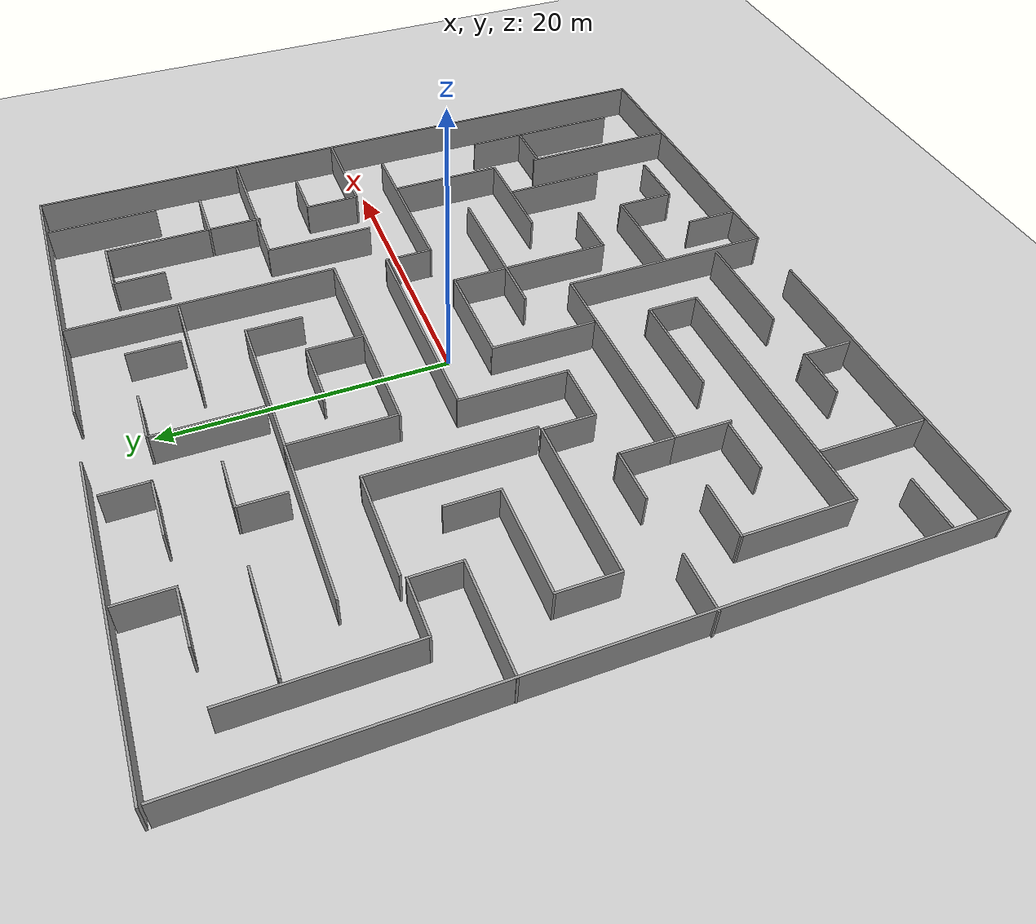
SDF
<sdf version="1.7">
 <world name="default">
  <light name="sun" type="directional">
   <pose>0 0 10 0 -0 0</pose>
   <diffuse>0.8 0.8 0.8 1</diffuse>
   <specular>0.2 0.2 0.2 1</specular>
   <attenuation>
    <range>1000</range>
    <constant>0.9</constant>
    <linear>0.01</linear>
    <quadratic>0.001</quadratic>
   </attenuation>
   <direction>-0.5 0.1 -0.9</direction>
   <spot><inner_angle>0</inner_angle><outer_angle>0</outer_angle><falloff>0</falloff></spot>
  </light>
  <model name="ground_plane">
   <static>1</static>
   <link name="link">
    <collision name="collision">
     <geometry><plane><normal>0 0 1</normal><size>100 100</size></plane></geometry>
     <surface><friction><ode><mu>100</mu><mu2>50</mu2></ode></friction></surface>
    </collision>
    <visual name="visual">
     <cast_shadows>0</cast_shadows>
     <geometry><plane><normal>0 0 1</normal><size>100 100</size></plane></geometry>
     <material>
      <script><uri>file://media/materials/scripts/gazebo.material</uri><name>Gazebo/Grey</name></script>
     </material>
    </visual>
   </link>
  </model>
  <gravity>0 0 -9.8</gravity>
  <magnetic_field>6e-06 2.3e-05 -4.2e-05</magnetic_field>
  <atmosphere type="adiabatic"/>
  <physics type="ode">
   <max_step_size>0.001</max_step_size>
   <real_time_factor>1</real_time_factor>
   <real_time_update_rate>1000</real_time_update_rate>
  </physics>
  <scene><ambient>0.4 0.4 0.4 1</ambient><background>0.7 0.7 0.7 1</background><shadows>1</shadows></scene>
  <audio><device>default</device></audio>
  <spherical_coordinates>
   <surface_model>EARTH_WGS84</surface_model>
   <latitude_deg>0</latitude_deg>
   <longitude_deg>0</longitude_deg>
   <elevation>0</elevation>
   <heading_deg>0</heading_deg>
  </spherical_coordinates>
  <model name="maze">
   <pose>-0.176019 -0.470899 0 0 -0 0</pose>
   <link name="Wall_1">
    <collision name="Wall_1_Collision">
     <geometry><box><size>23 0.15 2.5</size></box></geometry>
     <pose>0 0 1.25 0 -0 0</pose>
    </collision>
    <visual name="Wall_1_Visual">
     <pose>0 0 1.25 0 -0 0</pose>
     <geometry><box><size>23 0.15 2.5</size></box></geometry>
     <material>
      <script><uri>file://media/materials/scripts/gazebo.material</uri><name>Gazebo/Grey</name></script>
      <ambient>1 1 1 1</ambient>
     </material>
     <meta><layer>0</layer></meta>
    </visual>
    <pose>-13.1707 -24.8262 0 0 -0 3.14159</pose>
   </link>
   <link name="Wall_10">
    <collision name="Wall_10_Collision">
     <geometry><box><size>15.5 0.15 2.5</size></box></geometry>
     <pose>0 0 1.25 0 -0 0</pose>
    </collision>
    <visual name="Wall_10_Visual">
     <pose>0 0 1.25 0 -0 0</pose>
     <geometry><box><size>15.5 0.15 2.5</size></box></geometry>
     <material>
      <script><uri>file://media/materials/scripts/gazebo.material</uri><name>Gazebo/Grey</name></script>
      <ambient>1 1 1 1</ambient>
     </material>
     <meta><layer>0</layer></meta>
    </visual>
    <pose>-5.30755 -9.51126 0 0 -0 3.14159</pose>
   </link>
   <link name="Wall_100">
    <collision name="Wall_100_Collision">
     <geometry><box><size>3.75 0.15 2.5</size></box></geometry>
     <pose>0 0 1.25 0 -0 0</pose>
    </collision>
    <visual name="Wall_100_Visual">
     <pose>0 0 1.25 0 -0 0</pose>
     <geometry><box><size>3.75 0.15 2.5</size></box></geometry>
     <material>
      <script><uri>file://media/materials/scripts/gazebo.material</uri><name>Gazebo/Grey</name></script>
      <ambient>1 1 1 1</ambient>
     </material>
     <meta><layer>0</layer></meta>
    </visual>
    <pose>-13.2593 22.7784 0 0 -0 1.5708</pose>
   </link>
   <link name="Wall_102">
    <collision name="Wall_102_Collision">
     <geometry><box><size>4.25 0.15 2.5</size></box></geometry>
     <pose>0 0 1.25 0 -0 0</pose>
    </collision>
    <visual name="Wall_102_Visual">
     <pose>0 0 1.25 0 -0 0</pose>
     <geometry><box><size>4.25 0.15 2.5</size></box></geometry>
     <material>
      <script><uri>file://media/materials/scripts/gazebo.material</uri><name>Gazebo/Grey</name></script>
      <ambient>1 1 1 1</ambient>
     </material>
     <meta><layer>0</layer></meta>
    </visual>
    <pose>-7.45109 21.0658 0 0 -0 0</pose>
   </link>
   <link name="Wall_103">
    <collision name="Wall_103_Collision">
     <geometry><box><size>3.25 0.15 2.5</size></box></geometry>
     <pose>0 0 1.25 0 -0 0</pose>
    </collision>
    <visual name="Wall_103_Visual">
     <pose>0 0 1.25 0 -0 0</pose>
     <geometry><box><size>3.25 0.15 2.5</size></box></geometry>
     <material>
      <script><uri>file://media/materials/scripts/gazebo.material</uri><name>Gazebo/Grey</name></script>
      <ambient>1 1 1 1</ambient>
     </material>
     <meta><layer>0</layer></meta>
    </visual>
    <pose>-5.40109 22.6158 0 0 -0 1.5708</pose>
   </link>
   <link name="Wall_105">
    <collision name="Wall_105_Collision">
     <geometry><box><size>3.75 0.15 2.5</size></box></geometry>
     <pose>0 0 1.25 0 -0 0</pose>
    </collision>
    <visual name="Wall_105_Visual">
     <pose>0 0 1.25 0 -0 0</pose>
     <geometry><box><size>3.75 0.15 2.5</size></box></geometry>
     <material>
      <script><uri>file://media/materials/scripts/gazebo.material</uri><name>Gazebo/Grey</name></script>
      <ambient>1 1 1 1</ambient>
     </material>
     <meta><layer>0</layer></meta>
    </visual>
    <pose>-0.020004 20.8035 0 0 -0 3.14159</pose>
   </link>
   <link name="Wall_106">
    <collision name="Wall_106_Collision">
     <geometry><box><size>7.5 0.15 2.5</size></box></geometry>
     <pose>0 0 1.25 0 -0 0</pose>
    </collision>
    <visual name="Wall_106_Visual">
     <pose>0 0 1.25 0 -0 0</pose>
     <geometry><box><size>7.5 0.15 2.5</size></box></geometry>
     <material>
      <script><uri>file://media/materials/scripts/gazebo.material</uri><name>Gazebo/Grey</name></script>
      <ambient>1 1 1 1</ambient>
     </material>
     <meta><layer>0</layer></meta>
    </visual>
    <pose>-1.82 17.1285 0 0 -0 -1.5708</pose>
   </link>
   <link name="Wall_108">
    <collision name="Wall_108_Collision">
     <geometry><box><size>7.75 0.15 2.5</size></box></geometry>
     <pose>0 0 1.25 0 -0 0</pose>
    </collision>
    <visual name="Wall_108_Visual">
     <pose>0 0 1.25 0 -0 0</pose>
     <geometry><box><size>7.75 0.15 2.5</size></box></geometry>
     <material>
      <script><uri>file://media/materials/scripts/gazebo.material</uri><name>Gazebo/Grey</name></script>
      <ambient>1 1 1 1</ambient>
     </material>
     <meta><layer>0</layer></meta>
    </visual>
    <pose>5.66745 16.8682 0 0 -0 0</pose>
   </link>
   <link name="Wall_11">
    <collision name="Wall_11_Collision">
     <geometry><box><size>4 0.15 2.5</size></box></geometry>
     <pose>0 0 1.25 0 -0 0</pose>
    </collision>
    <visual name="Wall_11_Visual">
     <pose>0 0 1.25 0 -0 0</pose>
     <geometry><box><size>4 0.15 2.5</size></box></geometry>
     <material>
      <script><uri>file://media/materials/scripts/gazebo.material</uri><name>Gazebo/Grey</name></script>
      <ambient>1 1 1 1</ambient>
     </material>
     <meta><layer>0</layer></meta>
    </visual>
    <pose>-12.9826 -7.58626 0 0 -0 1.5708</pose>
   </link>
   <link name="Wall_110">
    <collision name="Wall_110_Collision">
     <geometry><box><size>3.75 0.15 2.5</size></box></geometry>
     <pose>0 0 1.25 0 -0 0</pose>
    </collision>
    <visual name="Wall_110_Visual">
     <pose>0 0 1.25 0 -0 0</pose>
     <geometry><box><size>3.75 0.15 2.5</size></box></geometry>
     <material>
      <script><uri>file://media/materials/scripts/gazebo.material</uri><name>Gazebo/Grey</name></script>
      <ambient>1 1 1 1</ambient>
     </material>
     <meta><layer>0</layer></meta>
    </visual>
    <pose>5.97761 19.1784 0 0 -0 -1.5708</pose>
   </link>
   <link name="Wall_112">
    <collision name="Wall_112_Collision">
     <geometry><box><size>11.5 0.15 2.5</size></box></geometry>
     <pose>0 0 1.25 0 -0 0</pose>
    </collision>
    <visual name="Wall_112_Visual">
     <pose>0 0 1.25 0 -0 0</pose>
     <geometry><box><size>11.5 0.15 2.5</size></box></geometry>
     <material>
      <script><uri>file://media/materials/scripts/gazebo.material</uri><name>Gazebo/Grey</name></script>
      <ambient>1 1 1 1</ambient>
     </material>
     <meta><layer>0</layer></meta>
    </visual>
    <pose>-9.32619 3.74139 0 0 -0 1.5708</pose>
   </link>
   <link name="Wall_113">
    <collision name="Wall_113_Collision">
     <geometry><box><size>7.5 0.15 2.5</size></box></geometry>
     <pose>0 0 1.25 0 -0 0</pose>
    </collision>
    <visual name="Wall_113_Visual">
     <pose>0 0 1.25 0 -0 0</pose>
     <geometry><box><size>7.5 0.15 2.5</size></box></geometry>
     <material>
      <script><uri>file://media/materials/scripts/gazebo.material</uri><name>Gazebo/Grey</name></script>
      <ambient>1 1 1 1</ambient>
     </material>
     <meta><layer>0</layer></meta>
    </visual>
    <pose>-13.0012 9.41639 0 0 -0 3.14159</pose>
   </link>
   <link name="Wall_116">
    <collision name="Wall_116_Collision">
     <geometry><box><size>7.5 0.15 2.5</size></box></geometry>
     <pose>0 0 1.25 0 -0 0</pose>
    </collision>
    <visual name="Wall_116_Visual">
     <pose>0 0 1.25 0 -0 0</pose>
     <geometry><box><size>7.5 0.15 2.5</size></box></geometry>
     <material>
      <script><uri>file://media/materials/scripts/gazebo.material</uri><name>Gazebo/Grey</name></script>
      <ambient>1 1 1 1</ambient>
     </material>
     <meta><layer>0</layer></meta>
    </visual>
    <pose>-1.80547 -5.60443 0 0 -0 1.5708</pose>
   </link>
   <link name="Wall_117">
    <collision name="Wall_117_Collision">
     <geometry><box><size>7.5 0.15 2.5</size></box></geometry>
     <pose>0 0 1.25 0 -0 0</pose>
    </collision>
    <visual name="Wall_117_Visual">
     <pose>0 0 1.25 0 -0 0</pose>
     <geometry><box><size>7.5 0.15 2.5</size></box></geometry>
     <material>
      <script><uri>file://media/materials/scripts/gazebo.material</uri><name>Gazebo/Grey</name></script>
      <ambient>1 1 1 1</ambient>
     </material>
     <meta><layer>0</layer></meta>
    </visual>
    <pose>1.86953 -1.92943 0 0 -0 0</pose>
   </link>
   <link name="Wall_118">
    <collision name="Wall_118_Collision">
     <geometry><box><size>11.75 0.15 2.5</size></box></geometry>
     <pose>0 0 1.25 0 -0 0</pose>
    </collision>
    <visual name="Wall_118_Visual">
     <pose>0 0 1.25 0 -0 0</pose>
     <geometry><box><size>11.75 0.15 2.5</size></box></geometry>
     <material>
      <script><uri>file://media/materials/scripts/gazebo.material</uri><name>Gazebo/Grey</name></script>
      <ambient>1 1 1 1</ambient>
     </material>
     <meta><layer>0</layer></meta>
    </visual>
    <pose>5.54453 -7.72943 0 0 -0 -1.5708</pose>
   </link>
   <link name="Wall_119">
    <collision name="Wall_119_Collision">
     <geometry><box><size>4.25 0.15 2.5</size></box></geometry>
     <pose>0 0 1.25 0 -0 0</pose>
    </collision>
    <visual name="Wall_119_Visual">
     <pose>0 0 1.25 0 -0 0</pose>
     <geometry><box><size>4.25 0.15 2.5</size></box></geometry>
     <material>
      <script><uri>file://media/materials/scripts/gazebo.material</uri><name>Gazebo/Grey</name></script>
      <ambient>1 1 1 1</ambient>
     </material>
     <meta><layer>0</layer></meta>
    </visual>
    <pose>7.59453 -13.5294 0 0 -0 0</pose>
   </link>
   <link name="Wall_12">
    <collision name="Wall_12_Collision">
     <geometry><box><size>3.75 0.15 2.5</size></box></geometry>
     <pose>0 0 1.25 0 -0 0</pose>
    </collision>
    <visual name="Wall_12_Visual">
     <pose>0 0 1.25 0 -0 0</pose>
     <geometry><box><size>3.75 0.15 2.5</size></box></geometry>
     <material>
      <script><uri>file://media/materials/scripts/gazebo.material</uri><name>Gazebo/Grey</name></script>
      <ambient>1 1 1 1</ambient>
     </material>
     <meta><layer>0</layer></meta>
    </visual>
    <pose>-14.7826 -5.66126 0 0 -0 3.14159</pose>
   </link>
   <link name="Wall_121">
    <collision name="Wall_121_Collision">
     <geometry><box><size>11.25 0.15 2.5</size></box></geometry>
     <pose>0 0 1.25 0 -0 0</pose>
    </collision>
    <visual name="Wall_121_Visual">
     <pose>0 0 1.25 0 -0 0</pose>
     <geometry><box><size>11.25 0.15 2.5</size></box></geometry>
     <material>
      <script><uri>file://media/materials/scripts/gazebo.material</uri><name>Gazebo/Grey</name></script>
      <ambient>1 1 1 1</ambient>
     </material>
     <meta><layer>0</layer></meta>
    </visual>
    <pose>7.59235 -5.86887 0 0 -0 0</pose>
   </link>
   <link name="Wall_14">
    <collision name="Wall_14_Collision">
     <geometry><box><size>3.75 0.15 2.5</size></box></geometry>
     <pose>0 0 1.25 0 -0 0</pose>
    </collision>
    <visual name="Wall_14_Visual">
     <pose>0 0 1.25 0 -0 0</pose>
     <geometry><box><size>3.75 0.15 2.5</size></box></geometry>
     <material>
      <script><uri>file://media/materials/scripts/gazebo.material</uri><name>Gazebo/Grey</name></script>
      <ambient>1 1 1 1</ambient>
     </material>
     <meta><layer>0</layer></meta>
    </visual>
    <pose>-15.0615 -13.1272 0 0 -0 3.14159</pose>
   </link>
   <link name="Wall_16">
    <collision name="Wall_16_Collision">
     <geometry><box><size>4 0.15 2.5</size></box></geometry>
     <pose>0 0 1.25 0 -0 0</pose>
    </collision>
    <visual name="Wall_16_Visual">
     <pose>0 0 1.25 0 -0 0</pose>
     <geometry><box><size>4 0.15 2.5</size></box></geometry>
     <material>
      <script><uri>file://media/materials/scripts/gazebo.material</uri><name>Gazebo/Grey</name></script>
      <ambient>1 1 1 1</ambient>
     </material>
     <meta><layer>0</layer></meta>
    </visual>
    <pose>-12.9826 -11.4363 0 0 -0 -1.5708</pose>
   </link>
   <link name="Wall_18">
    <collision name="Wall_18_Collision">
     <geometry><box><size>4 0.15 2.5</size></box></geometry>
     <pose>0 0 1.25 0 -0 0</pose>
    </collision>
    <visual name="Wall_18_Visual">
     <pose>0 0 1.25 0 -0 0</pose>
     <geometry><box><size>4 0.15 2.5</size></box></geometry>
     <material>
      <script><uri>file://media/materials/scripts/gazebo.material</uri><name>Gazebo/Grey</name></script>
      <ambient>1 1 1 1</ambient>
     </material>
     <meta><layer>0</layer></meta>
    </visual>
    <pose>-18.9468 -9.45433 0 0 -0 3.14159</pose>
   </link>
   <link name="Wall_19">
    <collision name="Wall_19_Collision">
     <geometry><box><size>7.75 0.15 2.5</size></box></geometry>
     <pose>0 0 1.25 0 -0 0</pose>
    </collision>
    <visual name="Wall_19_Visual">
     <pose>0 0 1.25 0 -0 0</pose>
     <geometry><box><size>7.75 0.15 2.5</size></box></geometry>
     <material>
      <script><uri>file://media/materials/scripts/gazebo.material</uri><name>Gazebo/Grey</name></script>
      <ambient>1 1 1 1</ambient>
     </material>
     <meta><layer>0</layer></meta>
    </visual>
    <pose>-20.8718 -13.2543 0 0 -0 -1.5708</pose>
   </link>
   <link name="Wall_2">
    <collision name="Wall_2_Collision">
     <geometry><box><size>49.5 0.15 2.5</size></box></geometry>
     <pose>0 0 1.25 0 -0 0</pose>
    </collision>
    <visual name="Wall_2_Visual">
     <pose>0 0 1.25 0 -0 0</pose>
     <geometry><box><size>49.5 0.15 2.5</size></box></geometry>
     <material>
      <script><uri>file://media/materials/scripts/gazebo.material</uri><name>Gazebo/Grey</name></script>
      <ambient>1 1 1 1</ambient>
     </material>
     <meta><layer>0</layer></meta>
    </visual>
    <pose>-24.5957 -0.151188 0 0 -0 1.5708</pose>
   </link>
   <link name="Wall_20">
    <collision name="Wall_20_Collision">
     <geometry><box><size>19 0.15 2.5</size></box></geometry>
     <pose>0 0 1.25 0 -0 0</pose>
    </collision>
    <visual name="Wall_20_Visual">
     <pose>0 0 1.25 0 -0 0</pose>
     <geometry><box><size>19 0.15 2.5</size></box></geometry>
     <material>
      <script><uri>file://media/materials/scripts/gazebo.material</uri><name>Gazebo/Grey</name></script>
      <ambient>1 1 1 1</ambient>
     </material>
     <meta><layer>0</layer></meta>
    </visual>
    <pose>-11.4468 -17.0543 0 0 -0 0</pose>
   </link>
   <link name="Wall_21">
    <collision name="Wall_21_Collision">
     <geometry><box><size>3.75 0.15 2.5</size></box></geometry>
     <pose>0 0 1.25 0 -0 0</pose>
    </collision>
    <visual name="Wall_21_Visual">
     <pose>0 0 1.25 0 -0 0</pose>
     <geometry><box><size>3.75 0.15 2.5</size></box></geometry>
     <material>
      <script><uri>file://media/materials/scripts/gazebo.material</uri><name>Gazebo/Grey</name></script>
      <ambient>1 1 1 1</ambient>
     </material>
     <meta><layer>0</layer></meta>
    </visual>
    <pose>-2.02182 -15.2543 0 0 -0 1.5708</pose>
   </link>
   <link name="Wall_22">
    <collision name="Wall_22_Collision">
     <geometry><box><size>7.5 0.15 2.5</size></box></geometry>
     <pose>0 0 1.25 0 -0 0</pose>
    </collision>
    <visual name="Wall_22_Visual">
     <pose>0 0 1.25 0 -0 0</pose>
     <geometry><box><size>7.5 0.15 2.5</size></box></geometry>
     <material>
      <script><uri>file://media/materials/scripts/gazebo.material</uri><name>Gazebo/Grey</name></script>
      <ambient>1 1 1 1</ambient>
     </material>
     <meta><layer>0</layer></meta>
    </visual>
    <pose>-5.69682 -13.4543 0 0 -0 3.14159</pose>
   </link>
   <link name="Wall_24">
    <collision name="Wall_24_Collision">
     <geometry><box><size>3.75 0.15 2.5</size></box></geometry>
     <pose>0 0 1.25 0 -0 0</pose>
    </collision>
    <visual name="Wall_24_Visual">
     <pose>0 0 1.25 0 -0 0</pose>
     <geometry><box><size>3.75 0.15 2.5</size></box></geometry>
     <material>
      <script><uri>file://media/materials/scripts/gazebo.material</uri><name>Gazebo/Grey</name></script>
      <ambient>1 1 1 1</ambient>
     </material>
     <meta><layer>0</layer></meta>
    </visual>
    <pose>-22.5822 -20.9978 0 0 -0 3.14159</pose>
   </link>
   <link name="Wall_26">
    <collision name="Wall_26_Collision">
     <geometry><box><size>7.5 0.15 2.5</size></box></geometry>
     <pose>0 0 1.25 0 -0 0</pose>
    </collision>
    <visual name="Wall_26_Visual">
     <pose>0 0 1.25 0 -0 0</pose>
     <geometry><box><size>7.5 0.15 2.5</size></box></geometry>
     <material>
      <script><uri>file://media/materials/scripts/gazebo.material</uri><name>Gazebo/Grey</name></script>
      <ambient>1 1 1 1</ambient>
     </material>
     <meta><layer>0</layer></meta>
    </visual>
    <pose>-17.0218 -20.9124 0 0 -0 -1.5708</pose>
   </link>
   <link name="Wall_28">
    <collision name="Wall_28_Collision">
     <geometry><box><size>3.75 0.15 2.5</size></box></geometry>
     <pose>0 0 1.25 0 -0 0</pose>
    </collision>
    <visual name="Wall_28_Visual">
     <pose>0 0 1.25 0 -0 0</pose>
     <geometry><box><size>3.75 0.15 2.5</size></box></geometry>
     <material>
      <script><uri>file://media/materials/scripts/gazebo.material</uri><name>Gazebo/Grey</name></script>
      <ambient>1 1 1 1</ambient>
     </material>
     <meta><layer>0</layer></meta>
    </visual>
    <pose>-11.2866 -20.9978 0 0 -0 0</pose>
   </link>
   <link name="Wall_29">
    <collision name="Wall_29_Collision">
     <geometry><box><size>3.5 0.15 2.5</size></box></geometry>
     <pose>0 0 1.25 0 -0 0</pose>
    </collision>
    <visual name="Wall_29_Visual">
     <pose>0 0 1.25 0 -0 0</pose>
     <geometry><box><size>3.5 0.15 2.5</size></box></geometry>
     <material>
      <script><uri>file://media/materials/scripts/gazebo.material</uri><name>Gazebo/Grey</name></script>
      <ambient>1 1 1 1</ambient>
     </material>
     <meta><layer>0</layer></meta>
    </visual>
    <pose>-9.48656 -22.6728 0 0 -0 -1.5708</pose>
   </link>
   <link name="Wall_31">
    <collision name="Wall_31_Collision">
     <geometry><box><size>7.75 0.15 2.5</size></box></geometry>
     <pose>0 0 1.25 0 -0 0</pose>
    </collision>
    <visual name="Wall_31_Visual">
     <pose>0 0 1.25 0 -0 0</pose>
     <geometry><box><size>7.75 0.15 2.5</size></box></geometry>
     <material>
      <script><uri>file://media/materials/scripts/gazebo.material</uri><name>Gazebo/Grey</name></script>
      <ambient>1 1 1 1</ambient>
     </material>
     <meta><layer>0</layer></meta>
    </visual>
    <pose>-1.94073 -20.9103 0 0 -0 0</pose>
   </link>
   <link name="Wall_33">
    <collision name="Wall_33_Collision">
     <geometry><box><size>4 0.15 2.5</size></box></geometry>
     <pose>0 0 1.25 0 -0 0</pose>
    </collision>
    <visual name="Wall_33_Visual">
     <pose>0 0 1.25 0 -0 0</pose>
     <geometry><box><size>4 0.15 2.5</size></box></geometry>
     <material>
      <script><uri>file://media/materials/scripts/gazebo.material</uri><name>Gazebo/Grey</name></script>
      <ambient>1 1 1 1</ambient>
     </material>
     <meta><layer>0</layer></meta>
    </visual>
    <pose>-22.7924 -5.78142 0 0 -0 0</pose>
   </link>
   <link name="Wall_35">
    <collision name="Wall_35_Collision">
     <geometry><box><size>7.75 0.15 2.5</size></box></geometry>
     <pose>0 0 1.25 0 -0 0</pose>
    </collision>
    <visual name="Wall_35_Visual">
     <pose>0 0 1.25 0 -0 0</pose>
     <geometry><box><size>7.75 0.15 2.5</size></box></geometry>
     <material>
      <script><uri>file://media/materials/scripts/gazebo.material</uri><name>Gazebo/Grey</name></script>
      <ambient>1 1 1 1</ambient>
     </material>
     <meta><layer>0</layer></meta>
    </visual>
    <pose>-20.83 5.76202 0 0 -0 0</pose>
   </link>
   <link name="Wall_36">
    <collision name="Wall_36_Collision">
     <geometry><box><size>3.5 0.15 2.5</size></box></geometry>
     <pose>0 0 1.25 0 -0 0</pose>
    </collision>
    <visual name="Wall_36_Visual">
     <pose>0 0 1.25 0 -0 0</pose>
     <geometry><box><size>3.5 0.15 2.5</size></box></geometry>
     <material>
      <script><uri>file://media/materials/scripts/gazebo.material</uri><name>Gazebo/Grey</name></script>
      <ambient>1 1 1 1</ambient>
     </material>
     <meta><layer>0</layer></meta>
    </visual>
    <pose>-17.03 7.43702 0 0 -0 1.5708</pose>
   </link>
   <link name="Wall_37">
    <collision name="Wall_37_Collision">
     <geometry><box><size>4 0.15 2.5</size></box></geometry>
     <pose>0 0 1.25 0 -0 0</pose>
    </collision>
    <visual name="Wall_37_Visual">
     <pose>0 0 1.25 0 -0 0</pose>
     <geometry><box><size>4 0.15 2.5</size></box></geometry>
     <material>
      <script><uri>file://media/materials/scripts/gazebo.material</uri><name>Gazebo/Grey</name></script>
      <ambient>1 1 1 1</ambient>
     </material>
     <meta><layer>0</layer></meta>
    </visual>
    <pose>-18.955 9.11202 0 0 -0 3.14159</pose>
   </link>
   <link name="Wall_38">
    <collision name="Wall_38_Collision">
     <geometry><box><size>11.75 0.15 2.5</size></box></geometry>
     <pose>0 0 1.25 0 -0 0</pose>
    </collision>
    <visual name="Wall_38_Visual">
     <pose>0 0 1.25 0 -0 0</pose>
     <geometry><box><size>11.75 0.15 2.5</size></box></geometry>
     <material>
      <script><uri>file://media/materials/scripts/gazebo.material</uri><name>Gazebo/Grey</name></script>
      <ambient>1 1 1 1</ambient>
     </material>
     <meta><layer>0</layer></meta>
    </visual>
    <pose>-20.88 14.912 0 0 -0 1.5708</pose>
   </link>
   <link name="Wall_4">
    <collision name="Wall_4_Collision">
     <geometry><box><size>22.25 0.15 2.5</size></box></geometry>
     <pose>0 0 1.25 0 -0 0</pose>
    </collision>
    <visual name="Wall_4_Visual">
     <pose>0 0 1.25 0 -0 0</pose>
     <geometry><box><size>22.25 0.15 2.5</size></box></geometry>
     <material>
      <script><uri>file://media/materials/scripts/gazebo.material</uri><name>Gazebo/Grey</name></script>
      <ambient>1 1 1 1</ambient>
     </material>
     <meta><layer>0</layer></meta>
    </visual>
    <pose>-13.58 24.8262 0 0 -0 0</pose>
   </link>
   <link name="Wall_40">
    <collision name="Wall_40_Collision">
     <geometry><box><size>3.75 0.15 2.5</size></box></geometry>
     <pose>0 0 1.25 0 -0 0</pose>
    </collision>
    <visual name="Wall_40_Visual">
     <pose>0 0 1.25 0 -0 0</pose>
     <geometry><box><size>3.75 0.15 2.5</size></box></geometry>
     <material>
      <script><uri>file://media/materials/scripts/gazebo.material</uri><name>Gazebo/Grey</name></script>
      <ambient>1 1 1 1</ambient>
     </material>
     <meta><layer>0</layer></meta>
    </visual>
    <pose>-13.0866 3.78712 0 0 -0 -1.5708</pose>
   </link>
   <link name="Wall_41">
    <collision name="Wall_41_Collision">
     <geometry><box><size>7.75 0.15 2.5</size></box></geometry>
     <pose>0 0 1.25 0 -0 0</pose>
    </collision>
    <visual name="Wall_41_Visual">
     <pose>0 0 1.25 0 -0 0</pose>
     <geometry><box><size>7.75 0.15 2.5</size></box></geometry>
     <material>
      <script><uri>file://media/materials/scripts/gazebo.material</uri><name>Gazebo/Grey</name></script>
      <ambient>1 1 1 1</ambient>
     </material>
     <meta><layer>0</layer></meta>
    </visual>
    <pose>-16.8866 1.98712 0 0 -0 3.14159</pose>
   </link>
   <link name="Wall_42">
    <collision name="Wall_42_Collision">
     <geometry><box><size>4.25 0.15 2.5</size></box></geometry>
     <pose>0 0 1.25 0 -0 0</pose>
    </collision>
    <visual name="Wall_42_Visual">
     <pose>0 0 1.25 0 -0 0</pose>
     <geometry><box><size>4.25 0.15 2.5</size></box></geometry>
     <material>
      <script><uri>file://media/materials/scripts/gazebo.material</uri><name>Gazebo/Grey</name></script>
      <ambient>1 1 1 1</ambient>
     </material>
     <meta><layer>0</layer></meta>
    </visual>
    <pose>-20.6866 -0.062878 0 0 -0 -1.5708</pose>
   </link>
   <link name="Wall_43">
    <collision name="Wall_43_Collision">
     <geometry><box><size>11.25 0.15 2.5</size></box></geometry>
     <pose>0 0 1.25 0 -0 0</pose>
    </collision>
    <visual name="Wall_43_Visual">
     <pose>0 0 1.25 0 -0 0</pose>
     <geometry><box><size>11.25 0.15 2.5</size></box></geometry>
     <material>
      <script><uri>file://media/materials/scripts/gazebo.material</uri><name>Gazebo/Grey</name></script>
      <ambient>1 1 1 1</ambient>
     </material>
     <meta><layer>0</layer></meta>
    </visual>
    <pose>-15.1366 -2.11288 0 0 -0 0</pose>
   </link>
   <link name="Wall_44">
    <collision name="Wall_44_Collision">
     <geometry><box><size>3.75 0.15 2.5</size></box></geometry>
     <pose>0 0 1.25 0 -0 0</pose>
    </collision>
    <visual name="Wall_44_Visual">
     <pose>0 0 1.25 0 -0 0</pose>
     <geometry><box><size>3.75 0.15 2.5</size></box></geometry>
     <material>
      <script><uri>file://media/materials/scripts/gazebo.material</uri><name>Gazebo/Grey</name></script>
      <ambient>1 1 1 1</ambient>
     </material>
     <meta><layer>0</layer></meta>
    </visual>
    <pose>-9.58656 -3.91288 0 0 -0 -1.5708</pose>
   </link>
   <link name="Wall_45">
    <collision name="Wall_45_Collision">
     <geometry><box><size>4.25 0.15 2.5</size></box></geometry>
     <pose>0 0 1.25 0 -0 0</pose>
    </collision>
    <visual name="Wall_45_Visual">
     <pose>0 0 1.25 0 -0 0</pose>
     <geometry><box><size>4.25 0.15 2.5</size></box></geometry>
     <material>
      <script><uri>file://media/materials/scripts/gazebo.material</uri><name>Gazebo/Grey</name></script>
      <ambient>1 1 1 1</ambient>
     </material>
     <meta><layer>0</layer></meta>
    </visual>
    <pose>-7.53656 -5.71288 0 0 -0 0</pose>
   </link>
   <link name="Wall_46">
    <collision name="Wall_46_Collision">
     <geometry><box><size>7.75 0.15 2.5</size></box></geometry>
     <pose>0 0 1.25 0 -0 0</pose>
    </collision>
    <visual name="Wall_46_Visual">
     <pose>0 0 1.25 0 -0 0</pose>
     <geometry><box><size>7.75 0.15 2.5</size></box></geometry>
     <material>
      <script><uri>file://media/materials/scripts/gazebo.material</uri><name>Gazebo/Grey</name></script>
      <ambient>1 1 1 1</ambient>
     </material>
     <meta><layer>0</layer></meta>
    </visual>
    <pose>-5.48656 -1.91288 0 0 -0 1.5708</pose>
   </link>
   <link name="Wall_47">
    <collision name="Wall_47_Collision">
     <geometry><box><size>15 0.15 2.5</size></box></geometry>
     <pose>0 0 1.25 0 -0 0</pose>
    </collision>
    <visual name="Wall_47_Visual">
     <pose>0 0 1.25 0 -0 0</pose>
     <geometry><box><size>15 0.15 2.5</size></box></geometry>
     <material>
      <script><uri>file://media/materials/scripts/gazebo.material</uri><name>Gazebo/Grey</name></script>
      <ambient>1 1 1 1</ambient>
     </material>
     <meta><layer>0</layer></meta>
    </visual>
    <pose>1.93844 1.88712 0 0 -0 0</pose>
   </link>
   <link name="Wall_48">
    <collision name="Wall_48_Collision">
     <geometry><box><size>3.5 0.15 2.5</size></box></geometry>
     <pose>0 0 1.25 0 -0 0</pose>
    </collision>
    <visual name="Wall_48_Visual">
     <pose>0 0 1.25 0 -0 0</pose>
     <geometry><box><size>3.5 0.15 2.5</size></box></geometry>
     <material>
      <script><uri>file://media/materials/scripts/gazebo.material</uri><name>Gazebo/Grey</name></script>
      <ambient>1 1 1 1</ambient>
     </material>
     <meta><layer>0</layer></meta>
    </visual>
    <pose>9.36344 0.212122 0 0 -0 -1.5708</pose>
   </link>
   <link name="Wall_49">
    <collision name="Wall_49_Collision">
     <geometry><box><size>11.75 0.15 2.5</size></box></geometry>
     <pose>0 0 1.25 0 -0 0</pose>
    </collision>
    <visual name="Wall_49_Visual">
     <pose>0 0 1.25 0 -0 0</pose>
     <geometry><box><size>11.75 0.15 2.5</size></box></geometry>
     <material>
      <script><uri>file://media/materials/scripts/gazebo.material</uri><name>Gazebo/Grey</name></script>
      <ambient>1 1 1 1</ambient>
     </material>
     <meta><layer>0</layer></meta>
    </visual>
    <pose>15.1634 -1.46288 0 0 -0 0</pose>
   </link>
   <link name="Wall_51">
    <collision name="Wall_51_Collision">
     <geometry><box><size>8.25 0.15 2.5</size></box></geometry>
     <pose>0 0 1.25 0 -0 0</pose>
    </collision>
    <visual name="Wall_51_Visual">
     <pose>0 0 1.25 0 -0 0</pose>
     <geometry><box><size>8.25 0.15 2.5</size></box></geometry>
     <material>
      <script><uri>file://media/materials/scripts/gazebo.material</uri><name>Gazebo/Grey</name></script>
      <ambient>1 1 1 1</ambient>
     </material>
     <meta><layer>0</layer></meta>
    </visual>
    <pose>17.4336 -5.6338 0 0 -0 -1.5708</pose>
   </link>
   <link name="Wall_52">
    <collision name="Wall_52_Collision">
     <geometry><box><size>7.75 0.15 2.5</size></box></geometry>
     <pose>0 0 1.25 0 -0 0</pose>
    </collision>
    <visual name="Wall_52_Visual">
     <pose>0 0 1.25 0 -0 0</pose>
     <geometry><box><size>7.75 0.15 2.5</size></box></geometry>
     <material>
      <script><uri>file://media/materials/scripts/gazebo.material</uri><name>Gazebo/Grey</name></script>
      <ambient>1 1 1 1</ambient>
     </material>
     <meta><layer>0</layer></meta>
    </visual>
    <pose>13.6336 -9.6838 0 0 -0 3.14159</pose>
   </link>
   <link name="Wall_54">
    <collision name="Wall_54_Collision">
     <geometry><box><size>7.25 0.15 2.5</size></box></geometry>
     <pose>0 0 1.25 0 -0 0</pose>
    </collision>
    <visual name="Wall_54_Visual">
     <pose>0 0 1.25 0 -0 0</pose>
     <geometry><box><size>7.25 0.15 2.5</size></box></geometry>
     <material>
      <script><uri>file://media/materials/scripts/gazebo.material</uri><name>Gazebo/Grey</name></script>
      <ambient>1 1 1 1</ambient>
     </material>
     <meta><layer>0</layer></meta>
    </visual>
    <pose>13.9356 -13.4416 0 0 -0 -1.5708</pose>
   </link>
   <link name="Wall_56">
    <collision name="Wall_56_Collision">
     <geometry><box><size>3.75 0.15 2.5</size></box></geometry>
     <pose>0 0 1.25 0 -0 0</pose>
    </collision>
    <visual name="Wall_56_Visual">
     <pose>0 0 1.25 0 -0 0</pose>
     <geometry><box><size>3.75 0.15 2.5</size></box></geometry>
     <material>
      <script><uri>file://media/materials/scripts/gazebo.material</uri><name>Gazebo/Grey</name></script>
      <ambient>1 1 1 1</ambient>
     </material>
     <meta><layer>0</layer></meta>
    </visual>
    <pose>5.80271 -22.7103 0 0 -0 -1.5708</pose>
   </link>
   <link name="Wall_58">
    <collision name="Wall_58_Collision">
     <geometry><box><size>7.25 0.15 2.5</size></box></geometry>
     <pose>0 0 1.25 0 -0 0</pose>
    </collision>
    <visual name="Wall_58_Visual">
     <pose>0 0 1.25 0 -0 0</pose>
     <geometry><box><size>7.25 0.15 2.5</size></box></geometry>
     <material>
      <script><uri>file://media/materials/scripts/gazebo.material</uri><name>Gazebo/Grey</name></script>
      <ambient>1 1 1 1</ambient>
     </material>
     <meta><layer>0</layer></meta>
    </visual>
    <pose>5.94215 -16.9751 0 0 -0 0</pose>
   </link>
   <link name="Wall_59">
    <collision name="Wall_59_Collision">
     <geometry><box><size>4.25 0.15 2.5</size></box></geometry>
     <pose>0 0 1.25 0 -0 0</pose>
    </collision>
    <visual name="Wall_59_Visual">
     <pose>0 0 1.25 0 -0 0</pose>
     <geometry><box><size>4.25 0.15 2.5</size></box></geometry>
     <material>
      <script><uri>file://media/materials/scripts/gazebo.material</uri><name>Gazebo/Grey</name></script>
      <ambient>1 1 1 1</ambient>
     </material>
     <meta><layer>0</layer></meta>
    </visual>
    <pose>9.49215 -19.0251 0 0 -0 -1.5708</pose>
   </link>
   <link name="Wall_6">
    <collision name="Wall_6_Collision">
     <geometry><box><size>23 0.15 2.5</size></box></geometry>
     <pose>0 0 1.25 0 -0 0</pose>
    </collision>
    <visual name="Wall_6_Visual">
     <pose>0 0 1.25 0 -0 0</pose>
     <geometry><box><size>23 0.15 2.5</size></box></geometry>
     <material>
      <script><uri>file://media/materials/scripts/gazebo.material</uri><name>Gazebo/Grey</name></script>
      <ambient>1 1 1 1</ambient>
     </material>
     <meta><layer>0</layer></meta>
    </visual>
    <pose>13.2924 24.7387 0 0 -0 0</pose>
   </link>
   <link name="Wall_60">
    <collision name="Wall_60_Collision">
     <geometry><box><size>4.25 0.15 2.5</size></box></geometry>
     <pose>0 0 1.25 0 -0 0</pose>
    </collision>
    <visual name="Wall_60_Visual">
     <pose>0 0 1.25 0 -0 0</pose>
     <geometry><box><size>4.25 0.15 2.5</size></box></geometry>
     <material>
      <script><uri>file://media/materials/scripts/gazebo.material</uri><name>Gazebo/Grey</name></script>
      <ambient>1 1 1 1</ambient>
     </material>
     <meta><layer>0</layer></meta>
    </visual>
    <pose>11.5421 -21.0751 0 0 -0 0</pose>
   </link>
   <link name="Wall_62">
    <collision name="Wall_62_Collision">
     <geometry><box><size>11.5 0.15 2.5</size></box></geometry>
     <pose>0 0 1.25 0 -0 0</pose>
    </collision>
    <visual name="Wall_62_Visual">
     <pose>0 0 1.25 0 -0 0</pose>
     <geometry><box><size>11.5 0.15 2.5</size></box></geometry>
     <material>
      <script><uri>file://media/materials/scripts/gazebo.material</uri><name>Gazebo/Grey</name></script>
      <ambient>1 1 1 1</ambient>
     </material>
     <meta><layer>0</layer></meta>
    </visual>
    <pose>17.3462 -18.8022 0 0 -0 -1.5708</pose>
   </link>
   <link name="Wall_64">
    <collision name="Wall_64_Collision">
     <geometry><box><size>3.5 0.15 2.5</size></box></geometry>
     <pose>0 0 1.25 0 -0 0</pose>
    </collision>
    <visual name="Wall_64_Visual">
     <pose>0 0 1.25 0 -0 0</pose>
     <geometry><box><size>3.5 0.15 2.5</size></box></geometry>
     <material>
      <script><uri>file://media/materials/scripts/gazebo.material</uri><name>Gazebo/Grey</name></script>
      <ambient>1 1 1 1</ambient>
     </material>
     <meta><layer>0</layer></meta>
    </visual>
    <pose>19.1961 -13.3896 0 0 -0 0</pose>
   </link>
   <link name="Wall_66">
    <collision name="Wall_66_Collision">
     <geometry><box><size>11.75 0.15 2.5</size></box></geometry>
     <pose>0 0 1.25 0 -0 0</pose>
    </collision>
    <visual name="Wall_66_Visual">
     <pose>0 0 1.25 0 -0 0</pose>
     <geometry><box><size>11.75 0.15 2.5</size></box></geometry>
     <material>
      <script><uri>file://media/materials/scripts/gazebo.material</uri><name>Gazebo/Grey</name></script>
      <ambient>1 1 1 1</ambient>
     </material>
     <meta><layer>0</layer></meta>
    </visual>
    <pose>21.1065 -15.2543 0 0 -0 -1.5708</pose>
   </link>
   <link name="Wall_68">
    <collision name="Wall_68_Collision">
     <geometry><box><size>7.25 0.15 2.5</size></box></geometry>
     <pose>0 0 1.25 0 -0 0</pose>
    </collision>
    <visual name="Wall_68_Visual">
     <pose>0 0 1.25 0 -0 0</pose>
     <geometry><box><size>7.25 0.15 2.5</size></box></geometry>
     <material>
      <script><uri>file://media/materials/scripts/gazebo.material</uri><name>Gazebo/Grey</name></script>
      <ambient>1 1 1 1</ambient>
     </material>
     <meta><layer>0</layer></meta>
    </visual>
    <pose>21.0545 1.73931 0 0 -0 3.14159</pose>
   </link>
   <link name="Wall_69">
    <collision name="Wall_69_Collision">
     <geometry><box><size>4 0.15 2.5</size></box></geometry>
     <pose>0 0 1.25 0 -0 0</pose>
    </collision>
    <visual name="Wall_69_Visual">
     <pose>0 0 1.25 0 -0 0</pose>
     <geometry><box><size>4 0.15 2.5</size></box></geometry>
     <material>
      <script><uri>file://media/materials/scripts/gazebo.material</uri><name>Gazebo/Grey</name></script>
      <ambient>1 1 1 1</ambient>
     </material>
     <meta><layer>0</layer></meta>
    </visual>
    <pose>17.5045 3.66431 0 0 -0 1.5708</pose>
   </link>
   <link name="Wall_7">
    <collision name="Wall_7_Collision">
     <geometry><box><size>49.5 0.15 2.5</size></box></geometry>
     <pose>0 0 1.25 0 -0 0</pose>
    </collision>
    <visual name="Wall_7_Visual">
     <pose>0 0 1.25 0 -0 0</pose>
     <geometry><box><size>49.5 0.15 2.5</size></box></geometry>
     <material>
      <script><uri>file://media/materials/scripts/gazebo.material</uri><name>Gazebo/Grey</name></script>
      <ambient>1 1 1 1</ambient>
     </material>
     <meta><layer>0</layer></meta>
    </visual>
    <pose>24.7174 0.063741 0 0 -0 -1.5708</pose>
   </link>
   <link name="Wall_70">
    <collision name="Wall_70_Collision">
     <geometry><box><size>3.75 0.15 2.5</size></box></geometry>
     <pose>0 0 1.25 0 -0 0</pose>
    </collision>
    <visual name="Wall_70_Visual">
     <pose>0 0 1.25 0 -0 0</pose>
     <geometry><box><size>3.75 0.15 2.5</size></box></geometry>
     <material>
      <script><uri>file://media/materials/scripts/gazebo.material</uri><name>Gazebo/Grey</name></script>
      <ambient>1 1 1 1</ambient>
     </material>
     <meta><layer>0</layer></meta>
    </visual>
    <pose>19.3045 5.58931 0 0 -0 0</pose>
   </link>
   <link name="Wall_72">
    <collision name="Wall_72_Collision">
     <geometry><box><size>7.75 0.15 2.5</size></box></geometry>
     <pose>0 0 1.25 0 -0 0</pose>
    </collision>
    <visual name="Wall_72_Visual">
     <pose>0 0 1.25 0 -0 0</pose>
     <geometry><box><size>7.75 0.15 2.5</size></box></geometry>
     <material>
      <script><uri>file://media/materials/scripts/gazebo.material</uri><name>Gazebo/Grey</name></script>
      <ambient>1 1 1 1</ambient>
     </material>
     <meta><layer>0</layer></meta>
    </visual>
    <pose>13.4109 5.80166 0 0 -0 1.5708</pose>
   </link>
   <link name="Wall_73">
    <collision name="Wall_73_Collision">
     <geometry><box><size>11.25 0.15 2.5</size></box></geometry>
     <pose>0 0 1.25 0 -0 0</pose>
    </collision>
    <visual name="Wall_73_Visual">
     <pose>0 0 1.25 0 -0 0</pose>
     <geometry><box><size>11.25 0.15 2.5</size></box></geometry>
     <material>
      <script><uri>file://media/materials/scripts/gazebo.material</uri><name>Gazebo/Grey</name></script>
      <ambient>1 1 1 1</ambient>
     </material>
     <meta><layer>0</layer></meta>
    </visual>
    <pose>18.9609 9.60166 0 0 -0 0</pose>
   </link>
   <link name="Wall_75">
    <collision name="Wall_75_Collision">
     <geometry><box><size>11.5 0.15 2.5</size></box></geometry>
     <pose>0 0 1.25 0 -0 0</pose>
    </collision>
    <visual name="Wall_75_Visual">
     <pose>0 0 1.25 0 -0 0</pose>
     <geometry><box><size>11.5 0.15 2.5</size></box></geometry>
     <material>
      <script><uri>file://media/materials/scripts/gazebo.material</uri><name>Gazebo/Grey</name></script>
      <ambient>1 1 1 1</ambient>
     </material>
     <meta><layer>0</layer></meta>
    </visual>
    <pose>17.3462 15.1099 0 0 -0 1.5708</pose>
   </link>
   <link name="Wall_76">
    <collision name="Wall_76_Collision">
     <geometry><box><size>4 0.15 2.5</size></box></geometry>
     <pose>0 0 1.25 0 -0 0</pose>
    </collision>
    <visual name="Wall_76_Visual">
     <pose>0 0 1.25 0 -0 0</pose>
     <geometry><box><size>4 0.15 2.5</size></box></geometry>
     <material>
      <script><uri>file://media/materials/scripts/gazebo.material</uri><name>Gazebo/Grey</name></script>
      <ambient>1 1 1 1</ambient>
     </material>
     <meta><layer>0</layer></meta>
    </visual>
    <pose>15.4212 20.7849 0 0 -0 3.14159</pose>
   </link>
   <link name="Wall_77">
    <collision name="Wall_77_Collision">
     <geometry><box><size>3.75 0.15 2.5</size></box></geometry>
     <pose>0 0 1.25 0 -0 0</pose>
    </collision>
    <visual name="Wall_77_Visual">
     <pose>0 0 1.25 0 -0 0</pose>
     <geometry><box><size>3.75 0.15 2.5</size></box></geometry>
     <material>
      <script><uri>file://media/materials/scripts/gazebo.material</uri><name>Gazebo/Grey</name></script>
      <ambient>1 1 1 1</ambient>
     </material>
     <meta><layer>0</layer></meta>
    </visual>
    <pose>13.4962 18.9849 0 0 -0 -1.5708</pose>
   </link>
   <link name="Wall_79">
    <collision name="Wall_79_Collision">
     <geometry><box><size>4 0.15 2.5</size></box></geometry>
     <pose>0 0 1.25 0 -0 0</pose>
    </collision>
    <visual name="Wall_79_Visual">
     <pose>0 0 1.25 0 -0 0</pose>
     <geometry><box><size>4 0.15 2.5</size></box></geometry>
     <material>
      <script><uri>file://media/materials/scripts/gazebo.material</uri><name>Gazebo/Grey</name></script>
      <ambient>1 1 1 1</ambient>
     </material>
     <meta><layer>0</layer></meta>
    </visual>
    <pose>19.2712 13.1953 0 0 -0 0</pose>
   </link>
   <link name="Wall_8">
    <collision name="Wall_8_Collision">
     <geometry><box><size>22.5 0.15 2.5</size></box></geometry>
     <pose>0 0 1.25 0 -0 0</pose>
    </collision>
    <visual name="Wall_8_Visual">
     <pose>0 0 1.25 0 -0 0</pose>
     <geometry><box><size>22.5 0.15 2.5</size></box></geometry>
     <material>
      <script><uri>file://media/materials/scripts/gazebo.material</uri><name>Gazebo/Grey</name></script>
      <ambient>1 1 1 1</ambient>
     </material>
     <meta><layer>0</layer></meta>
    </visual>
    <pose>13.5424 -24.6113 0 0 -0 3.14159</pose>
   </link>
   <link name="Wall_81">
    <collision name="Wall_81_Collision">
     <geometry><box><size>8 0.15 2.5</size></box></geometry>
     <pose>0 0 1.25 0 -0 0</pose>
    </collision>
    <visual name="Wall_81_Visual">
     <pose>0 0 1.25 0 -0 0</pose>
     <geometry><box><size>8 0.15 2.5</size></box></geometry>
     <material>
      <script><uri>file://media/materials/scripts/gazebo.material</uri><name>Gazebo/Grey</name></script>
      <ambient>1 1 1 1</ambient>
     </material>
     <meta><layer>0</layer></meta>
    </visual>
    <pose>21.1065 20.5514 0 0 -0 -1.5708</pose>
   </link>
   <link name="Wall_83">
    <collision name="Wall_83_Collision">
     <geometry><box><size>19 0.15 2.5</size></box></geometry>
     <pose>0 0 1.25 0 -0 0</pose>
    </collision>
    <visual name="Wall_83_Visual">
     <pose>0 0 1.25 0 -0 0</pose>
     <geometry><box><size>19 0.15 2.5</size></box></geometry>
     <material>
      <script><uri>file://media/materials/scripts/gazebo.material</uri><name>Gazebo/Grey</name></script>
      <ambient>1 1 1 1</ambient>
     </material>
     <meta><layer>0</layer></meta>
    </visual>
    <pose>9.73797 15.1388 0 0 -0 -1.5708</pose>
   </link>
   <link name="Wall_84">
    <collision name="Wall_84_Collision">
     <geometry><box><size>15.25 0.15 2.5</size></box></geometry>
     <pose>0 0 1.25 0 -0 0</pose>
    </collision>
    <visual name="Wall_84_Visual">
     <pose>0 0 1.25 0 -0 0</pose>
     <geometry><box><size>15.25 0.15 2.5</size></box></geometry>
     <material>
      <script><uri>file://media/materials/scripts/gazebo.material</uri><name>Gazebo/Grey</name></script>
      <ambient>1 1 1 1</ambient>
     </material>
     <meta><layer>0</layer></meta>
    </visual>
    <pose>2.18797 5.71384 0 0 -0 3.14159</pose>
   </link>
   <link name="Wall_85">
    <collision name="Wall_85_Collision">
     <geometry><box><size>7.5 0.15 2.5</size></box></geometry>
     <pose>0 0 1.25 0 -0 0</pose>
    </collision>
    <visual name="Wall_85_Visual">
     <pose>0 0 1.25 0 -0 0</pose>
     <geometry><box><size>7.5 0.15 2.5</size></box></geometry>
     <material>
      <script><uri>file://media/materials/scripts/gazebo.material</uri><name>Gazebo/Grey</name></script>
      <ambient>1 1 1 1</ambient>
     </material>
     <meta><layer>0</layer></meta>
    </visual>
    <pose>-5.36203 9.38884 0 0 -0 1.5708</pose>
   </link>
   <link name="Wall_86">
    <collision name="Wall_86_Collision">
     <geometry><box><size>11.75 0.15 2.5</size></box></geometry>
     <pose>0 0 1.25 0 -0 0</pose>
    </collision>
    <visual name="Wall_86_Visual">
     <pose>0 0 1.25 0 -0 0</pose>
     <geometry><box><size>11.75 0.15 2.5</size></box></geometry>
     <material>
      <script><uri>file://media/materials/scripts/gazebo.material</uri><name>Gazebo/Grey</name></script>
      <ambient>1 1 1 1</ambient>
     </material>
     <meta><layer>0</layer></meta>
    </visual>
    <pose>-11.162 13.0638 0 0 -0 3.14159</pose>
   </link>
   <link name="Wall_88">
    <collision name="Wall_88_Collision">
     <geometry><box><size>11 0.15 2.5</size></box></geometry>
     <pose>0 0 1.25 0 -0 0</pose>
    </collision>
    <visual name="Wall_88_Visual">
     <pose>0 0 1.25 0 -0 0</pose>
     <geometry><box><size>11 0.15 2.5</size></box></geometry>
     <material>
      <script><uri>file://media/materials/scripts/gazebo.material</uri><name>Gazebo/Grey</name></script>
      <ambient>1 1 1 1</ambient>
     </material>
     <meta><layer>0</layer></meta>
    </visual>
    <pose>0.062974 13.0638 0 0 -0 0</pose>
   </link>
   <link name="Wall_89">
    <collision name="Wall_89_Collision">
     <geometry><box><size>4 0.15 2.5</size></box></geometry>
     <pose>0 0 1.25 0 -0 0</pose>
    </collision>
    <visual name="Wall_89_Visual">
     <pose>0 0 1.25 0 -0 0</pose>
     <geometry><box><size>4 0.15 2.5</size></box></geometry>
     <material>
      <script><uri>file://media/materials/scripts/gazebo.material</uri><name>Gazebo/Grey</name></script>
      <ambient>1 1 1 1</ambient>
     </material>
     <meta><layer>0</layer></meta>
    </visual>
    <pose>5.48797 11.1388 0 0 -0 -1.5708</pose>
   </link>
   <link name="Wall_9">
    <collision name="Wall_9_Collision">
     <geometry><box><size>15.25 0.15 2.5</size></box></geometry>
     <pose>0 0 1.25 0 -0 0</pose>
    </collision>
    <visual name="Wall_9_Visual">
     <pose>0 0 1.25 0 -0 0</pose>
     <geometry><box><size>15.25 0.15 2.5</size></box></geometry>
     <material>
      <script><uri>file://media/materials/scripts/gazebo.material</uri><name>Gazebo/Grey</name></script>
      <ambient>1 1 1 1</ambient>
     </material>
     <meta><layer>0</layer></meta>
    </visual>
    <pose>2.36745 -17.0613 0 0 -0 1.5708</pose>
   </link>
   <link name="Wall_91">
    <collision name="Wall_91_Collision">
     <geometry><box><size>4.25 0.15 2.5</size></box></geometry>
     <pose>0 0 1.25 0 -0 0</pose>
    </collision>
    <visual name="Wall_91_Visual">
     <pose>0 0 1.25 0 -0 0</pose>
     <geometry><box><size>4.25 0.15 2.5</size></box></geometry>
     <material>
      <script><uri>file://media/materials/scripts/gazebo.material</uri><name>Gazebo/Grey</name></script>
      <ambient>1 1 1 1</ambient>
     </material>
     <meta><layer>0</layer></meta>
    </visual>
    <pose>0.244533 9.69729 0 0 -0 0</pose>
   </link>
   <link name="Wall_92">
    <collision name="Wall_92_Collision">
     <geometry><box><size>4 0.15 2.5</size></box></geometry>
     <pose>0 0 1.25 0 -0 0</pose>
    </collision>
    <visual name="Wall_92_Visual">
     <pose>0 0 1.25 0 -0 0</pose>
     <geometry><box><size>4 0.15 2.5</size></box></geometry>
     <material>
      <script><uri>file://media/materials/scripts/gazebo.material</uri><name>Gazebo/Grey</name></script>
      <ambient>1 1 1 1</ambient>
     </material>
     <meta><layer>0</layer></meta>
    </visual>
    <pose>2.29453 7.77229 0 0 -0 -1.5708</pose>
   </link>
   <link name="Wall_94">
    <collision name="Wall_94_Collision">
     <geometry><box><size>3.75 0.15 2.5</size></box></geometry>
     <pose>0 0 1.25 0 -0 0</pose>
    </collision>
    <visual name="Wall_94_Visual">
     <pose>0 0 1.25 0 -0 0</pose>
     <geometry><box><size>3.75 0.15 2.5</size></box></geometry>
     <material>
      <script><uri>file://media/materials/scripts/gazebo.material</uri><name>Gazebo/Grey</name></script>
      <ambient>1 1 1 1</ambient>
     </material>
     <meta><layer>0</layer></meta>
    </visual>
    <pose>-7.19093 16.8682 0 0 -0 3.14159</pose>
   </link>
   <link name="Wall_95">
    <collision name="Wall_95_Collision">
     <geometry><box><size>3.25 0.15 2.5</size></box></geometry>
     <pose>0 0 1.25 0 -0 0</pose>
    </collision>
    <visual name="Wall_95_Visual">
     <pose>0 0 1.25 0 -0 0</pose>
     <geometry><box><size>3.25 0.15 2.5</size></box></geometry>
     <material>
      <script><uri>file://media/materials/scripts/gazebo.material</uri><name>Gazebo/Grey</name></script>
      <ambient>1 1 1 1</ambient>
     </material>
     <meta><layer>0</layer></meta>
    </visual>
    <pose>-8.99093 15.3182 0 0 -0 -1.5708</pose>
   </link>
   <link name="Wall_97">
    <collision name="Wall_97_Collision">
     <geometry><box><size>7.25 0.15 2.5</size></box></geometry>
     <pose>0 0 1.25 0 -0 0</pose>
    </collision>
    <visual name="Wall_97_Visual">
     <pose>0 0 1.25 0 -0 0</pose>
     <geometry><box><size>7.25 0.15 2.5</size></box></geometry>
     <material>
      <script><uri>file://media/materials/scripts/gazebo.material</uri><name>Gazebo/Grey</name></script>
      <ambient>1 1 1 1</ambient>
     </material>
     <meta><layer>0</layer></meta>
    </visual>
    <pose>-16.8824 17.0431 0 0 -0 0</pose>
   </link>
   <link name="Wall_99">
    <collision name="Wall_99_Collision">
     <geometry><box><size>4 0.15 2.5</size></box></geometry>
     <pose>0 0 1.25 0 -0 0</pose>
    </collision>
    <visual name="Wall_99_Visual">
     <pose>0 0 1.25 0 -0 0</pose>
     <geometry><box><size>4 0.15 2.5</size></box></geometry>
     <material>
      <script><uri>file://media/materials/scripts/gazebo.material</uri><name>Gazebo/Grey</name></script>
      <ambient>1 1 1 1</ambient>
     </material>
     <meta><layer>0</layer></meta>
    </visual>
    <pose>-15.1843 20.9784 0 0 -0 0</pose>
   </link>
   <static>1</static>
  </model>
 </world>
</sdf>
